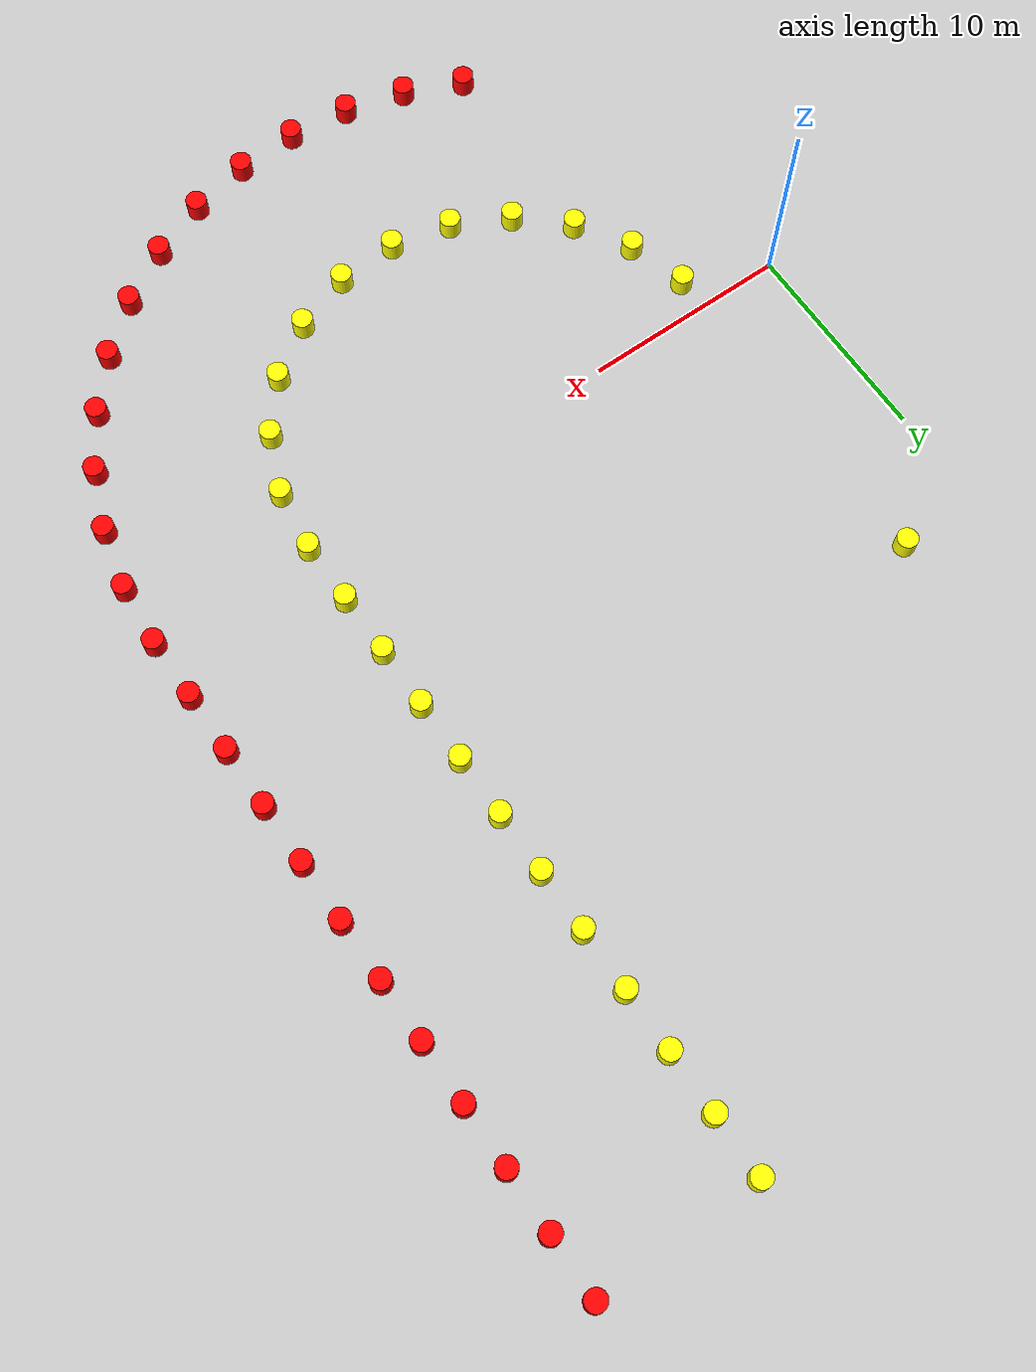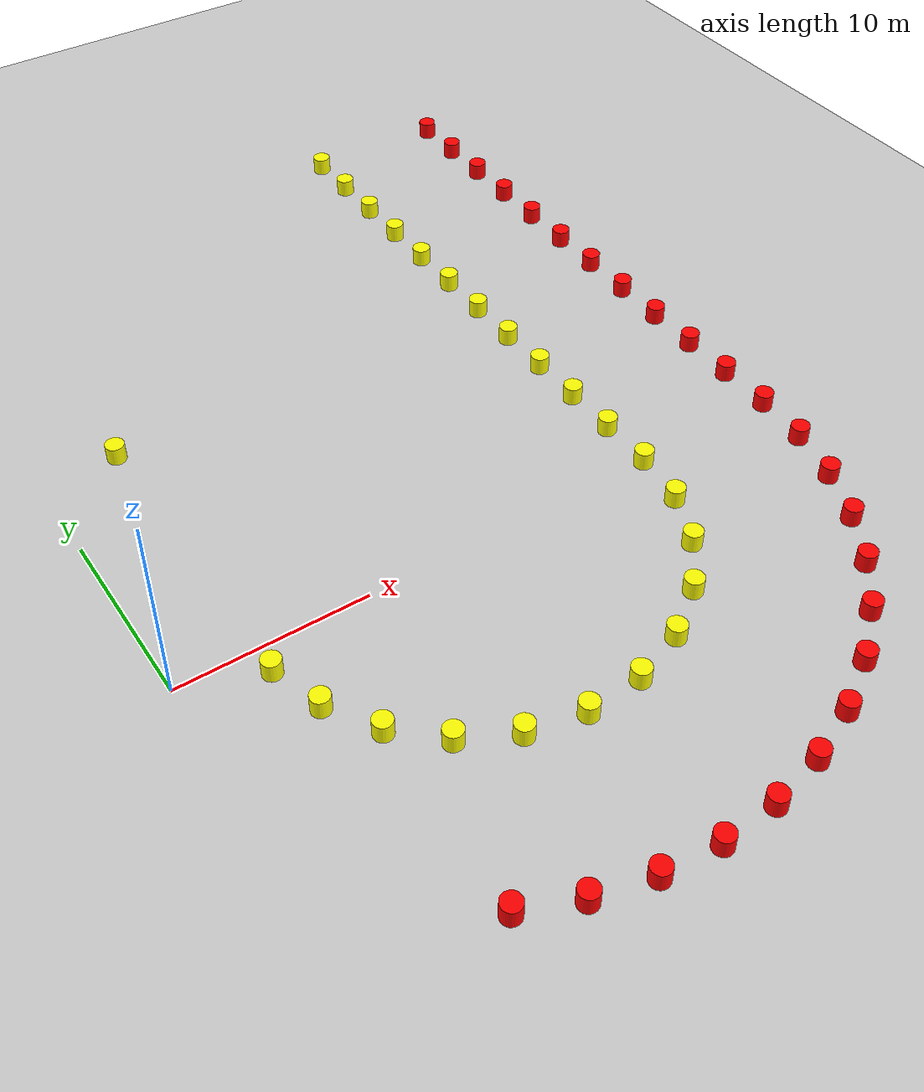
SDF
<sdf version="1.9">
 <world name="empty">
  <model name="ground_plane">
   <static>true</static>
   <link name="link">
    <collision name="collision">
     <geometry><plane><normal>0 0 1</normal><size>1000 1000</size></plane></geometry>
    </collision>
    <visual name="visual">
     <geometry><plane><normal>0 0 1</normal><size>1000 1000</size></plane></geometry>
     <material>
      <ambient>0.8 0.8 0.8 1</ambient>
      <diffuse>0.8 0.8 0.8 1</diffuse>
      <specular>0.8 0.8 0.8 1</specular>
     </material>
    </visual>
    <inertial>
     <mass>1</mass>
     <inertia><ixx>1</ixx><ixy>0</ixy><ixz>0</ixz><iyy>1</iyy><iyz>0</iyz><izz>1</izz></inertia>
    </inertial>
   </link>
  </model>
  <model name="red_cone_79">
   <pose>34.0 33.00000000000001 0.5 0 -0 0</pose>
   <link name="cylinder_link">
    <inertial>
     <inertia>
      <ixx>0.14580000000000001</ixx>
      <ixy>0</ixy>
      <ixz>0</ixz>
      <iyy>0.14580000000000001</iyy>
      <iyz>0</iyz>
      <izz>0.125</izz>
     </inertia>
     <mass>1</mass>
    </inertial>
    <collision name="cylinder_collision">
     <geometry><cylinder><radius>0.5</radius><length>1</length></cylinder></geometry>
    </collision>
    <visual name="cylinder_visual">
     <geometry><cylinder><radius>0.5</radius><length>1</length></cylinder></geometry>
     <material><ambient>1 0 0 1</ambient><diffuse>1 0 0 1</diffuse><specular>1 1 1 1</specular></material>
    </visual>
   </link>
   <static>false</static>
  </model>
  <model name="red_cone_80">
   <pose>34.00000000000001 30.000000000000007 0.5 0 -0 0</pose>
   <link name="cylinder_link">
    <inertial>
     <inertia>
      <ixx>0.14580000000000001</ixx>
      <ixy>0</ixy>
      <ixz>0</ixz>
      <iyy>0.14580000000000001</iyy>
      <iyz>0</iyz>
      <izz>0.125</izz>
     </inertia>
     <mass>1</mass>
    </inertial>
    <collision name="cylinder_collision">
     <geometry><cylinder><radius>0.5</radius><length>1</length></cylinder></geometry>
    </collision>
    <visual name="cylinder_visual">
     <geometry><cylinder><radius>0.5</radius><length>1</length></cylinder></geometry>
     <material><ambient>1 0 0 1</ambient><diffuse>1 0 0 1</diffuse><specular>1 1 1 1</specular></material>
    </visual>
   </link>
   <static>false</static>
  </model>
  <model name="red_cone_81">
   <pose>34.00000000000001 27.000000000000007 0.5 0 -0 0</pose>
   <link name="cylinder_link">
    <inertial>
     <inertia>
      <ixx>0.14580000000000001</ixx>
      <ixy>0</ixy>
      <ixz>0</ixz>
      <iyy>0.14580000000000001</iyy>
      <iyz>0</iyz>
      <izz>0.125</izz>
     </inertia>
     <mass>1</mass>
    </inertial>
    <collision name="cylinder_collision">
     <geometry><cylinder><radius>0.5</radius><length>1</length></cylinder></geometry>
    </collision>
    <visual name="cylinder_visual">
     <geometry><cylinder><radius>0.5</radius><length>1</length></cylinder></geometry>
     <material><ambient>1 0 0 1</ambient><diffuse>1 0 0 1</diffuse><specular>1 1 1 1</specular></material>
    </visual>
   </link>
   <static>false</static>
  </model>
  <model name="red_cone_82">
   <pose>34.00000000000001 24.000000000000007 0.5 0 -0 0</pose>
   <link name="cylinder_link">
    <inertial>
     <inertia>
      <ixx>0.14580000000000001</ixx>
      <ixy>0</ixy>
      <ixz>0</ixz>
      <iyy>0.14580000000000001</iyy>
      <iyz>0</iyz>
      <izz>0.125</izz>
     </inertia>
     <mass>1</mass>
    </inertial>
    <collision name="cylinder_collision">
     <geometry><cylinder><radius>0.5</radius><length>1</length></cylinder></geometry>
    </collision>
    <visual name="cylinder_visual">
     <geometry><cylinder><radius>0.5</radius><length>1</length></cylinder></geometry>
     <material><ambient>1 0 0 1</ambient><diffuse>1 0 0 1</diffuse><specular>1 1 1 1</specular></material>
    </visual>
   </link>
   <static>false</static>
  </model>
  <model name="red_cone_83">
   <pose>34.00000000000001 21.000000000000007 0.5 0 -0 0</pose>
   <link name="cylinder_link">
    <inertial>
     <inertia>
      <ixx>0.14580000000000001</ixx>
      <ixy>0</ixy>
      <ixz>0</ixz>
      <iyy>0.14580000000000001</iyy>
      <iyz>0</iyz>
      <izz>0.125</izz>
     </inertia>
     <mass>1</mass>
    </inertial>
    <collision name="cylinder_collision">
     <geometry><cylinder><radius>0.5</radius><length>1</length></cylinder></geometry>
    </collision>
    <visual name="cylinder_visual">
     <geometry><cylinder><radius>0.5</radius><length>1</length></cylinder></geometry>
     <material><ambient>1 0 0 1</ambient><diffuse>1 0 0 1</diffuse><specular>1 1 1 1</specular></material>
    </visual>
   </link>
   <static>false</static>
  </model>
  <model name="red_cone_84">
   <pose>34.00000000000001 18.000000000000007 0.5 0 -0 0</pose>
   <link name="cylinder_link">
    <inertial>
     <inertia>
      <ixx>0.14580000000000001</ixx>
      <ixy>0</ixy>
      <ixz>0</ixz>
      <iyy>0.14580000000000001</iyy>
      <iyz>0</iyz>
      <izz>0.125</izz>
     </inertia>
     <mass>1</mass>
    </inertial>
    <collision name="cylinder_collision">
     <geometry><cylinder><radius>0.5</radius><length>1</length></cylinder></geometry>
    </collision>
    <visual name="cylinder_visual">
     <geometry><cylinder><radius>0.5</radius><length>1</length></cylinder></geometry>
     <material><ambient>1 0 0 1</ambient><diffuse>1 0 0 1</diffuse><specular>1 1 1 1</specular></material>
    </visual>
   </link>
   <static>false</static>
  </model>
  <model name="red_cone_85">
   <pose>34.00000000000001 15.000000000000007 0.5 0 -0 0</pose>
   <link name="cylinder_link">
    <inertial>
     <inertia>
      <ixx>0.14580000000000001</ixx>
      <ixy>0</ixy>
      <ixz>0</ixz>
      <iyy>0.14580000000000001</iyy>
      <iyz>0</iyz>
      <izz>0.125</izz>
     </inertia>
     <mass>1</mass>
    </inertial>
    <collision name="cylinder_collision">
     <geometry><cylinder><radius>0.5</radius><length>1</length></cylinder></geometry>
    </collision>
    <visual name="cylinder_visual">
     <geometry><cylinder><radius>0.5</radius><length>1</length></cylinder></geometry>
     <material><ambient>1 0 0 1</ambient><diffuse>1 0 0 1</diffuse><specular>1 1 1 1</specular></material>
    </visual>
   </link>
   <static>false</static>
  </model>
  <model name="red_cone_86">
   <pose>34.00000000000001 12.000000000000007 0.5 0 -0 0</pose>
   <link name="cylinder_link">
    <inertial>
     <inertia>
      <ixx>0.14580000000000001</ixx>
      <ixy>0</ixy>
      <ixz>0</ixz>
      <iyy>0.14580000000000001</iyy>
      <iyz>0</iyz>
      <izz>0.125</izz>
     </inertia>
     <mass>1</mass>
    </inertial>
    <collision name="cylinder_collision">
     <geometry><cylinder><radius>0.5</radius><length>1</length></cylinder></geometry>
    </collision>
    <visual name="cylinder_visual">
     <geometry><cylinder><radius>0.5</radius><length>1</length></cylinder></geometry>
     <material><ambient>1 0 0 1</ambient><diffuse>1 0 0 1</diffuse><specular>1 1 1 1</specular></material>
    </visual>
   </link>
   <static>false</static>
  </model>
  <model name="red_cone_87">
   <pose>34.00000000000001 9.000000000000007 0.5 0 -0 0</pose>
   <link name="cylinder_link">
    <inertial>
     <inertia>
      <ixx>0.14580000000000001</ixx>
      <ixy>0</ixy>
      <ixz>0</ixz>
      <iyy>0.14580000000000001</iyy>
      <iyz>0</iyz>
      <izz>0.125</izz>
     </inertia>
     <mass>1</mass>
    </inertial>
    <collision name="cylinder_collision">
     <geometry><cylinder><radius>0.5</radius><length>1</length></cylinder></geometry>
    </collision>
    <visual name="cylinder_visual">
     <geometry><cylinder><radius>0.5</radius><length>1</length></cylinder></geometry>
     <material><ambient>1 0 0 1</ambient><diffuse>1 0 0 1</diffuse><specular>1 1 1 1</specular></material>
    </visual>
   </link>
   <static>false</static>
  </model>
  <model name="red_cone_88">
   <pose>34.00000000000001 6.000000000000007 0.5 0 -0 0</pose>
   <link name="cylinder_link">
    <inertial>
     <inertia>
      <ixx>0.14580000000000001</ixx>
      <ixy>0</ixy>
      <ixz>0</ixz>
      <iyy>0.14580000000000001</iyy>
      <iyz>0</iyz>
      <izz>0.125</izz>
     </inertia>
     <mass>1</mass>
    </inertial>
    <collision name="cylinder_collision">
     <geometry><cylinder><radius>0.5</radius><length>1</length></cylinder></geometry>
    </collision>
    <visual name="cylinder_visual">
     <geometry><cylinder><radius>0.5</radius><length>1</length></cylinder></geometry>
     <material><ambient>1 0 0 1</ambient><diffuse>1 0 0 1</diffuse><specular>1 1 1 1</specular></material>
    </visual>
   </link>
   <static>false</static>
  </model>
  <model name="red_cone_89">
   <pose>34.00000000000001 3.000000000000007 0.5 0 -0 0</pose>
   <link name="cylinder_link">
    <inertial>
     <inertia>
      <ixx>0.14580000000000001</ixx>
      <ixy>0</ixy>
      <ixz>0</ixz>
      <iyy>0.14580000000000001</iyy>
      <iyz>0</iyz>
      <izz>0.125</izz>
     </inertia>
     <mass>1</mass>
    </inertial>
    <collision name="cylinder_collision">
     <geometry><cylinder><radius>0.5</radius><length>1</length></cylinder></geometry>
    </collision>
    <visual name="cylinder_visual">
     <geometry><cylinder><radius>0.5</radius><length>1</length></cylinder></geometry>
     <material><ambient>1 0 0 1</ambient><diffuse>1 0 0 1</diffuse><specular>1 1 1 1</specular></material>
    </visual>
   </link>
   <static>false</static>
  </model>
  <model name="red_cone_90">
   <pose>34.00000000000001 7.105427357601002e-15 0.5 0 -0 0</pose>
   <link name="cylinder_link">
    <inertial>
     <inertia>
      <ixx>0.14580000000000001</ixx>
      <ixy>0</ixy>
      <ixz>0</ixz>
      <iyy>0.14580000000000001</iyy>
      <iyz>0</iyz>
      <izz>0.125</izz>
     </inertia>
     <mass>1</mass>
    </inertial>
    <collision name="cylinder_collision">
     <geometry><cylinder><radius>0.5</radius><length>1</length></cylinder></geometry>
    </collision>
    <visual name="cylinder_visual">
     <geometry><cylinder><radius>0.5</radius><length>1</length></cylinder></geometry>
     <material><ambient>1 0 0 1</ambient><diffuse>1 0 0 1</diffuse><specular>1 1 1 1</specular></material>
    </visual>
   </link>
   <static>false</static>
  </model>
  <model name="red_cone_91">
   <pose>34.00000000000001 1.0595670735170958e-14 0.5 0 -0 0</pose>
   <link name="cylinder_link">
    <inertial>
     <inertia>
      <ixx>0.14580000000000001</ixx>
      <ixy>0</ixy>
      <ixz>0</ixz>
      <iyy>0.14580000000000001</iyy>
      <iyz>0</iyz>
      <izz>0.125</izz>
     </inertia>
     <mass>1</mass>
    </inertial>
    <collision name="cylinder_collision">
     <geometry><cylinder><radius>0.5</radius><length>1</length></cylinder></geometry>
    </collision>
    <visual name="cylinder_visual">
     <geometry><cylinder><radius>0.5</radius><length>1</length></cylinder></geometry>
     <material><ambient>1 0 0 1</ambient><diffuse>1 0 0 1</diffuse><specular>1 1 1 1</specular></material>
    </visual>
   </link>
   <static>false</static>
  </model>
  <model name="red_cone_92">
   <pose>33.76364954024481 -2.987550155373245 0.5 0 -0 0</pose>
   <link name="cylinder_link">
    <inertial>
     <inertia>
      <ixx>0.14580000000000001</ixx>
      <ixy>0</ixy>
      <ixz>0</ixz>
      <iyy>0.14580000000000001</iyy>
      <iyz>0</iyz>
      <izz>0.125</izz>
     </inertia>
     <mass>1</mass>
    </inertial>
    <collision name="cylinder_collision">
     <geometry><cylinder><radius>0.5</radius><length>1</length></cylinder></geometry>
    </collision>
    <visual name="cylinder_visual">
     <geometry><cylinder><radius>0.5</radius><length>1</length></cylinder></geometry>
     <material><ambient>1 0 0 1</ambient><diffuse>1 0 0 1</diffuse><specular>1 1 1 1</specular></material>
    </visual>
   </link>
   <static>false</static>
  </model>
  <model name="red_cone_93">
   <pose>33.06047832306625 -5.900773063087115 0.5 0 -0 0</pose>
   <link name="cylinder_link">
    <inertial>
     <inertia>
      <ixx>0.14580000000000001</ixx>
      <ixy>0</ixy>
      <ixz>0</ixz>
      <iyy>0.14580000000000001</iyy>
      <iyz>0</iyz>
      <izz>0.125</izz>
     </inertia>
     <mass>1</mass>
    </inertial>
    <collision name="cylinder_collision">
     <geometry><cylinder><radius>0.5</radius><length>1</length></cylinder></geometry>
    </collision>
    <visual name="cylinder_visual">
     <geometry><cylinder><radius>0.5</radius><length>1</length></cylinder></geometry>
     <material><ambient>1 0 0 1</ambient><diffuse>1 0 0 1</diffuse><specular>1 1 1 1</specular></material>
    </visual>
   </link>
   <static>false</static>
  </model>
  <model name="red_cone_94">
   <pose>31.907980542197635 -8.667190662761861 0.5 0 -0 0</pose>
   <link name="cylinder_link">
    <inertial>
     <inertia>
      <ixx>0.14580000000000001</ixx>
      <ixy>0</ixy>
      <ixz>0</ixz>
      <iyy>0.14580000000000001</iyy>
      <iyz>0</iyz>
      <izz>0.125</izz>
     </inertia>
     <mass>1</mass>
    </inertial>
    <collision name="cylinder_collision">
     <geometry><cylinder><radius>0.5</radius><length>1</length></cylinder></geometry>
    </collision>
    <visual name="cylinder_visual">
     <geometry><cylinder><radius>0.5</radius><length>1</length></cylinder></geometry>
     <material><ambient>1 0 0 1</ambient><diffuse>1 0 0 1</diffuse><specular>1 1 1 1</specular></material>
    </visual>
   </link>
   <static>false</static>
  </model>
  <model name="red_cone_95">
   <pose>30.334829185046893 -11.217977262654538 0.5 0 -0 0</pose>
   <link name="cylinder_link">
    <inertial>
     <inertia>
      <ixx>0.14580000000000001</ixx>
      <ixy>0</ixy>
      <ixz>0</ixz>
      <iyy>0.14580000000000001</iyy>
      <iyz>0</iyz>
      <izz>0.125</izz>
     </inertia>
     <mass>1</mass>
    </inertial>
    <collision name="cylinder_collision">
     <geometry><cylinder><radius>0.5</radius><length>1</length></cylinder></geometry>
    </collision>
    <visual name="cylinder_visual">
     <geometry><cylinder><radius>0.5</radius><length>1</length></cylinder></geometry>
     <material><ambient>1 0 0 1</ambient><diffuse>1 0 0 1</diffuse><specular>1 1 1 1</specular></material>
    </visual>
   </link>
   <static>false</static>
  </model>
  <model name="red_cone_96">
   <pose>28.380162677564243 -13.489671853752297 0.5 0 -0 0</pose>
   <link name="cylinder_link">
    <inertial>
     <inertia>
      <ixx>0.14580000000000001</ixx>
      <ixy>0</ixy>
      <ixz>0</ixz>
      <iyy>0.14580000000000001</iyy>
      <iyz>0</iyz>
      <izz>0.125</izz>
     </inertia>
     <mass>1</mass>
    </inertial>
    <collision name="cylinder_collision">
     <geometry><cylinder><radius>0.5</radius><length>1</length></cylinder></geometry>
    </collision>
    <visual name="cylinder_visual">
     <geometry><cylinder><radius>0.5</radius><length>1</length></cylinder></geometry>
     <material><ambient>1 0 0 1</ambient><diffuse>1 0 0 1</diffuse><specular>1 1 1 1</specular></material>
    </visual>
   </link>
   <static>false</static>
  </model>
  <model name="red_cone_97">
   <pose>26.092611159508795 -15.425756955946795 0.5 0 -0 0</pose>
   <link name="cylinder_link">
    <inertial>
     <inertia>
      <ixx>0.14580000000000001</ixx>
      <ixy>0</ixy>
      <ixz>0</ixz>
      <iyy>0.14580000000000001</iyy>
      <iyz>0</iyz>
      <izz>0.125</izz>
     </inertia>
     <mass>1</mass>
    </inertial>
    <collision name="cylinder_collision">
     <geometry><cylinder><radius>0.5</radius><length>1</length></cylinder></geometry>
    </collision>
    <visual name="cylinder_visual">
     <geometry><cylinder><radius>0.5</radius><length>1</length></cylinder></geometry>
     <material><ambient>1 0 0 1</ambient><diffuse>1 0 0 1</diffuse><specular>1 1 1 1</specular></material>
    </visual>
   </link>
   <static>false</static>
  </model>
  <model name="red_cone_98">
   <pose>23.529086615407508 -16.97806471618236 0.5 0 -0 0</pose>
   <link name="cylinder_link">
    <inertial>
     <inertia>
      <ixx>0.14580000000000001</ixx>
      <ixy>0</ixy>
      <ixz>0</ixz>
      <iyy>0.14580000000000001</iyy>
      <iyz>0</iyz>
      <izz>0.125</izz>
     </inertia>
     <mass>1</mass>
    </inertial>
    <collision name="cylinder_collision">
     <geometry><cylinder><radius>0.5</radius><length>1</length></cylinder></geometry>
    </collision>
    <visual name="cylinder_visual">
     <geometry><cylinder><radius>0.5</radius><length>1</length></cylinder></geometry>
     <material><ambient>1 0 0 1</ambient><diffuse>1 0 0 1</diffuse><specular>1 1 1 1</specular></material>
    </visual>
   </link>
   <static>false</static>
  </model>
  <model name="red_cone_99">
   <pose>20.753366961533235 -18.107975276268125 0.5 0 -0 0</pose>
   <link name="cylinder_link">
    <inertial>
     <inertia>
      <ixx>0.14580000000000001</ixx>
      <ixy>0</ixy>
      <ixz>0</ixz>
      <iyy>0.14580000000000001</iyy>
      <iyz>0</iyz>
      <izz>0.125</izz>
     </inertia>
     <mass>1</mass>
    </inertial>
    <collision name="cylinder_collision">
     <geometry><cylinder><radius>0.5</radius><length>1</length></cylinder></geometry>
    </collision>
    <visual name="cylinder_visual">
     <geometry><cylinder><radius>0.5</radius><length>1</length></cylinder></geometry>
     <material><ambient>1 0 0 1</ambient><diffuse>1 0 0 1</diffuse><specular>1 1 1 1</specular></material>
    </visual>
   </link>
   <static>false</static>
  </model>
  <model name="red_cone_100">
   <pose>17.834509315395955 -18.78737759616635 0.5 0 -0 0</pose>
   <link name="cylinder_link">
    <inertial>
     <inertia>
      <ixx>0.14580000000000001</ixx>
      <ixy>0</ixy>
      <ixz>0</ixz>
      <iyy>0.14580000000000001</iyy>
      <iyz>0</iyz>
      <izz>0.125</izz>
     </inertia>
     <mass>1</mass>
    </inertial>
    <collision name="cylinder_collision">
     <geometry><cylinder><radius>0.5</radius><length>1</length></cylinder></geometry>
    </collision>
    <visual name="cylinder_visual">
     <geometry><cylinder><radius>0.5</radius><length>1</length></cylinder></geometry>
     <material><ambient>1 0 0 1</ambient><diffuse>1 0 0 1</diffuse><specular>1 1 1 1</specular></material>
    </visual>
   </link>
   <static>false</static>
  </model>
  <model name="red_cone_101">
   <pose>14.845131924008728 -18.999368828438445 0.5 0 -0 0</pose>
   <link name="cylinder_link">
    <inertial>
     <inertia>
      <ixx>0.14580000000000001</ixx>
      <ixy>0</ixy>
      <ixz>0</ixz>
      <iyy>0.14580000000000001</iyy>
      <iyz>0</iyz>
      <izz>0.125</izz>
     </inertia>
     <mass>1</mass>
    </inertial>
    <collision name="cylinder_collision">
     <geometry><cylinder><radius>0.5</radius><length>1</length></cylinder></geometry>
    </collision>
    <visual name="cylinder_visual">
     <geometry><cylinder><radius>0.5</radius><length>1</length></cylinder></geometry>
     <material><ambient>1 0 0 1</ambient><diffuse>1 0 0 1</diffuse><specular>1 1 1 1</specular></material>
    </visual>
   </link>
   <static>false</static>
  </model>
  <model name="red_cone_102">
   <pose>11.859607494828051 -18.738674844114765 0.5 0 -0 0</pose>
   <link name="cylinder_link">
    <inertial>
     <inertia>
      <ixx>0.14580000000000001</ixx>
      <ixy>0</ixy>
      <ixz>0</ixz>
      <iyy>0.14580000000000001</iyy>
      <iyz>0</iyz>
      <izz>0.125</izz>
     </inertia>
     <mass>1</mass>
    </inertial>
    <collision name="cylinder_collision">
     <geometry><cylinder><radius>0.5</radius><length>1</length></cylinder></geometry>
    </collision>
    <visual name="cylinder_visual">
     <geometry><cylinder><radius>0.5</radius><length>1</length></cylinder></geometry>
     <material><ambient>1 0 0 1</ambient><diffuse>1 0 0 1</diffuse><specular>1 1 1 1</specular></material>
    </visual>
   </link>
   <static>false</static>
  </model>
  <model name="red_cone_103">
   <pose>8.952212877479885 -18.011781447726914 0.5 0 -0 0</pose>
   <link name="cylinder_link">
    <inertial>
     <inertia>
      <ixx>0.14580000000000001</ixx>
      <ixy>0</ixy>
      <ixz>0</ixz>
      <iyy>0.14580000000000001</iyy>
      <iyz>0</iyz>
      <izz>0.125</izz>
     </inertia>
     <mass>1</mass>
    </inertial>
    <collision name="cylinder_collision">
     <geometry><cylinder><radius>0.5</radius><length>1</length></cylinder></geometry>
    </collision>
    <visual name="cylinder_visual">
     <geometry><cylinder><radius>0.5</radius><length>1</length></cylinder></geometry>
     <material><ambient>1 0 0 1</ambient><diffuse>1 0 0 1</diffuse><specular>1 1 1 1</specular></material>
    </visual>
   </link>
   <static>false</static>
  </model>
  <model name="red_cone_104">
   <pose>6.195281130332713 -16.83677301700431 0.5 0 -0 0</pose>
   <link name="cylinder_link">
    <inertial>
     <inertia>
      <ixx>0.14580000000000001</ixx>
      <ixy>0</ixy>
      <ixz>0</ixz>
      <iyy>0.14580000000000001</iyy>
      <iyz>0</iyz>
      <izz>0.125</izz>
     </inertia>
     <mass>1</mass>
    </inertial>
    <collision name="cylinder_collision">
     <geometry><cylinder><radius>0.5</radius><length>1</length></cylinder></geometry>
    </collision>
    <visual name="cylinder_visual">
     <geometry><cylinder><radius>0.5</radius><length>1</length></cylinder></geometry>
     <material><ambient>1 0 0 1</ambient><diffuse>1 0 0 1</diffuse><specular>1 1 1 1</specular></material>
    </visual>
   </link>
   <static>false</static>
  </model>
  <model name="yellow_cone_6">
   <pose>4.0 15.000000000000002 0.5 0 -0 0</pose>
   <link name="cylinder_link">
    <inertial>
     <inertia>
      <ixx>0.14580000000000001</ixx>
      <ixy>0</ixy>
      <ixz>0</ixz>
      <iyy>0.14580000000000001</iyy>
      <iyz>0</iyz>
      <izz>0.125</izz>
     </inertia>
     <mass>1</mass>
    </inertial>
    <collision name="cylinder_collision">
     <geometry><cylinder><radius>0.5</radius><length>1</length></cylinder></geometry>
    </collision>
    <visual name="cylinder_visual">
     <geometry><cylinder><radius>0.5</radius><length>1</length></cylinder></geometry>
     <material><ambient>1 1 0 1</ambient><diffuse>1 1 0 1</diffuse><specular>1 1 1 1</specular></material>
    </visual>
   </link>
   <static>false</static>
  </model>
  <model name="yellow_cone_71">
   <pose>26.0 33.0 0.5 0 -0 0</pose>
   <link name="cylinder_link">
    <inertial>
     <inertia>
      <ixx>0.14580000000000001</ixx>
      <ixy>0</ixy>
      <ixz>0</ixz>
      <iyy>0.14580000000000001</iyy>
      <iyz>0</iyz>
      <izz>0.125</izz>
     </inertia>
     <mass>1</mass>
    </inertial>
    <collision name="cylinder_collision">
     <geometry><cylinder><radius>0.5</radius><length>1</length></cylinder></geometry>
    </collision>
    <visual name="cylinder_visual">
     <geometry><cylinder><radius>0.5</radius><length>1</length></cylinder></geometry>
     <material><ambient>1 1 0 1</ambient><diffuse>1 1 0 1</diffuse><specular>1 1 1 1</specular></material>
    </visual>
   </link>
   <static>false</static>
  </model>
  <model name="yellow_cone_72">
   <pose>26.0 30.0 0.5 0 -0 0</pose>
   <link name="cylinder_link">
    <inertial>
     <inertia>
      <ixx>0.14580000000000001</ixx>
      <ixy>0</ixy>
      <ixz>0</ixz>
      <iyy>0.14580000000000001</iyy>
      <iyz>0</iyz>
      <izz>0.125</izz>
     </inertia>
     <mass>1</mass>
    </inertial>
    <collision name="cylinder_collision">
     <geometry><cylinder><radius>0.5</radius><length>1</length></cylinder></geometry>
    </collision>
    <visual name="cylinder_visual">
     <geometry><cylinder><radius>0.5</radius><length>1</length></cylinder></geometry>
     <material><ambient>1 1 0 1</ambient><diffuse>1 1 0 1</diffuse><specular>1 1 1 1</specular></material>
    </visual>
   </link>
   <static>false</static>
  </model>
  <model name="yellow_cone_73">
   <pose>26.0 27.0 0.5 0 -0 0</pose>
   <link name="cylinder_link">
    <inertial>
     <inertia>
      <ixx>0.14580000000000001</ixx>
      <ixy>0</ixy>
      <ixz>0</ixz>
      <iyy>0.14580000000000001</iyy>
      <iyz>0</iyz>
      <izz>0.125</izz>
     </inertia>
     <mass>1</mass>
    </inertial>
    <collision name="cylinder_collision">
     <geometry><cylinder><radius>0.5</radius><length>1</length></cylinder></geometry>
    </collision>
    <visual name="cylinder_visual">
     <geometry><cylinder><radius>0.5</radius><length>1</length></cylinder></geometry>
     <material><ambient>1 1 0 1</ambient><diffuse>1 1 0 1</diffuse><specular>1 1 1 1</specular></material>
    </visual>
   </link>
   <static>false</static>
  </model>
  <model name="yellow_cone_74">
   <pose>26.0 24.0 0.5 0 -0 0</pose>
   <link name="cylinder_link">
    <inertial>
     <inertia>
      <ixx>0.14580000000000001</ixx>
      <ixy>0</ixy>
      <ixz>0</ixz>
      <iyy>0.14580000000000001</iyy>
      <iyz>0</iyz>
      <izz>0.125</izz>
     </inertia>
     <mass>1</mass>
    </inertial>
    <collision name="cylinder_collision">
     <geometry><cylinder><radius>0.5</radius><length>1</length></cylinder></geometry>
    </collision>
    <visual name="cylinder_visual">
     <geometry><cylinder><radius>0.5</radius><length>1</length></cylinder></geometry>
     <material><ambient>1 1 0 1</ambient><diffuse>1 1 0 1</diffuse><specular>1 1 1 1</specular></material>
    </visual>
   </link>
   <static>false</static>
  </model>
  <model name="yellow_cone_75">
   <pose>26.0 21.0 0.5 0 -0 0</pose>
   <link name="cylinder_link">
    <inertial>
     <inertia>
      <ixx>0.14580000000000001</ixx>
      <ixy>0</ixy>
      <ixz>0</ixz>
      <iyy>0.14580000000000001</iyy>
      <iyz>0</iyz>
      <izz>0.125</izz>
     </inertia>
     <mass>1</mass>
    </inertial>
    <collision name="cylinder_collision">
     <geometry><cylinder><radius>0.5</radius><length>1</length></cylinder></geometry>
    </collision>
    <visual name="cylinder_visual">
     <geometry><cylinder><radius>0.5</radius><length>1</length></cylinder></geometry>
     <material><ambient>1 1 0 1</ambient><diffuse>1 1 0 1</diffuse><specular>1 1 1 1</specular></material>
    </visual>
   </link>
   <static>false</static>
  </model>
  <model name="yellow_cone_76">
   <pose>26.0 18.0 0.5 0 -0 0</pose>
   <link name="cylinder_link">
    <inertial>
     <inertia>
      <ixx>0.14580000000000001</ixx>
      <ixy>0</ixy>
      <ixz>0</ixz>
      <iyy>0.14580000000000001</iyy>
      <iyz>0</iyz>
      <izz>0.125</izz>
     </inertia>
     <mass>1</mass>
    </inertial>
    <collision name="cylinder_collision">
     <geometry><cylinder><radius>0.5</radius><length>1</length></cylinder></geometry>
    </collision>
    <visual name="cylinder_visual">
     <geometry><cylinder><radius>0.5</radius><length>1</length></cylinder></geometry>
     <material><ambient>1 1 0 1</ambient><diffuse>1 1 0 1</diffuse><specular>1 1 1 1</specular></material>
    </visual>
   </link>
   <static>false</static>
  </model>
  <model name="yellow_cone_77">
   <pose>26.000000000000004 15.0 0.5 0 -0 0</pose>
   <link name="cylinder_link">
    <inertial>
     <inertia>
      <ixx>0.14580000000000001</ixx>
      <ixy>0</ixy>
      <ixz>0</ixz>
      <iyy>0.14580000000000001</iyy>
      <iyz>0</iyz>
      <izz>0.125</izz>
     </inertia>
     <mass>1</mass>
    </inertial>
    <collision name="cylinder_collision">
     <geometry><cylinder><radius>0.5</radius><length>1</length></cylinder></geometry>
    </collision>
    <visual name="cylinder_visual">
     <geometry><cylinder><radius>0.5</radius><length>1</length></cylinder></geometry>
     <material><ambient>1 1 0 1</ambient><diffuse>1 1 0 1</diffuse><specular>1 1 1 1</specular></material>
    </visual>
   </link>
   <static>false</static>
  </model>
  <model name="yellow_cone_78">
   <pose>26.000000000000004 12.0 0.5 0 -0 0</pose>
   <link name="cylinder_link">
    <inertial>
     <inertia>
      <ixx>0.14580000000000001</ixx>
      <ixy>0</ixy>
      <ixz>0</ixz>
      <iyy>0.14580000000000001</iyy>
      <iyz>0</iyz>
      <izz>0.125</izz>
     </inertia>
     <mass>1</mass>
    </inertial>
    <collision name="cylinder_collision">
     <geometry><cylinder><radius>0.5</radius><length>1</length></cylinder></geometry>
    </collision>
    <visual name="cylinder_visual">
     <geometry><cylinder><radius>0.5</radius><length>1</length></cylinder></geometry>
     <material><ambient>1 1 0 1</ambient><diffuse>1 1 0 1</diffuse><specular>1 1 1 1</specular></material>
    </visual>
   </link>
   <static>false</static>
  </model>
  <model name="yellow_cone_79">
   <pose>26.000000000000004 9.0 0.5 0 -0 0</pose>
   <link name="cylinder_link">
    <inertial>
     <inertia>
      <ixx>0.14580000000000001</ixx>
      <ixy>0</ixy>
      <ixz>0</ixz>
      <iyy>0.14580000000000001</iyy>
      <iyz>0</iyz>
      <izz>0.125</izz>
     </inertia>
     <mass>1</mass>
    </inertial>
    <collision name="cylinder_collision">
     <geometry><cylinder><radius>0.5</radius><length>1</length></cylinder></geometry>
    </collision>
    <visual name="cylinder_visual">
     <geometry><cylinder><radius>0.5</radius><length>1</length></cylinder></geometry>
     <material><ambient>1 1 0 1</ambient><diffuse>1 1 0 1</diffuse><specular>1 1 1 1</specular></material>
    </visual>
   </link>
   <static>false</static>
  </model>
  <model name="yellow_cone_80">
   <pose>26.000000000000004 6.0 0.5 0 -0 0</pose>
   <link name="cylinder_link">
    <inertial>
     <inertia>
      <ixx>0.14580000000000001</ixx>
      <ixy>0</ixy>
      <ixz>0</ixz>
      <iyy>0.14580000000000001</iyy>
      <iyz>0</iyz>
      <izz>0.125</izz>
     </inertia>
     <mass>1</mass>
    </inertial>
    <collision name="cylinder_collision">
     <geometry><cylinder><radius>0.5</radius><length>1</length></cylinder></geometry>
    </collision>
    <visual name="cylinder_visual">
     <geometry><cylinder><radius>0.5</radius><length>1</length></cylinder></geometry>
     <material><ambient>1 1 0 1</ambient><diffuse>1 1 0 1</diffuse><specular>1 1 1 1</specular></material>
    </visual>
   </link>
   <static>false</static>
  </model>
  <model name="yellow_cone_81">
   <pose>26.000000000000004 3.0 0.5 0 -0 0</pose>
   <link name="cylinder_link">
    <inertial>
     <inertia>
      <ixx>0.14580000000000001</ixx>
      <ixy>0</ixy>
      <ixz>0</ixz>
      <iyy>0.14580000000000001</iyy>
      <iyz>0</iyz>
      <izz>0.125</izz>
     </inertia>
     <mass>1</mass>
    </inertial>
    <collision name="cylinder_collision">
     <geometry><cylinder><radius>0.5</radius><length>1</length></cylinder></geometry>
    </collision>
    <visual name="cylinder_visual">
     <geometry><cylinder><radius>0.5</radius><length>1</length></cylinder></geometry>
     <material><ambient>1 1 0 1</ambient><diffuse>1 1 0 1</diffuse><specular>1 1 1 1</specular></material>
    </visual>
   </link>
   <static>false</static>
  </model>
  <model name="yellow_cone_82">
   <pose>26.000000000000004 0.0 0.5 0 -0 0</pose>
   <link name="cylinder_link">
    <inertial>
     <inertia>
      <ixx>0.14580000000000001</ixx>
      <ixy>0</ixy>
      <ixz>0</ixz>
      <iyy>0.14580000000000001</iyy>
      <iyz>0</iyz>
      <izz>0.125</izz>
     </inertia>
     <mass>1</mass>
    </inertial>
    <collision name="cylinder_collision">
     <geometry><cylinder><radius>0.5</radius><length>1</length></cylinder></geometry>
    </collision>
    <visual name="cylinder_visual">
     <geometry><cylinder><radius>0.5</radius><length>1</length></cylinder></geometry>
     <material><ambient>1 1 0 1</ambient><diffuse>1 1 0 1</diffuse><specular>1 1 1 1</specular></material>
    </visual>
   </link>
   <static>false</static>
  </model>
  <model name="yellow_cone_83">
   <pose>26.000000000000004 2.020667218593133e-15 0.5 0 -0 0</pose>
   <link name="cylinder_link">
    <inertial>
     <inertia>
      <ixx>0.14580000000000001</ixx>
      <ixy>0</ixy>
      <ixz>0</ixz>
      <iyy>0.14580000000000001</iyy>
      <iyz>0</iyz>
      <izz>0.125</izz>
     </inertia>
     <mass>1</mass>
    </inertial>
    <collision name="cylinder_collision">
     <geometry><cylinder><radius>0.5</radius><length>1</length></cylinder></geometry>
    </collision>
    <visual name="cylinder_visual">
     <geometry><cylinder><radius>0.5</radius><length>1</length></cylinder></geometry>
     <material><ambient>1 1 0 1</ambient><diffuse>1 1 0 1</diffuse><specular>1 1 1 1</specular></material>
    </visual>
   </link>
   <static>false</static>
  </model>
  <model name="yellow_cone_84">
   <pose>25.59343849987712 -2.962947982891581 0.5 0 -0 0</pose>
   <link name="cylinder_link">
    <inertial>
     <inertia>
      <ixx>0.14580000000000001</ixx>
      <ixy>0</ixy>
      <ixz>0</ixz>
      <iyy>0.14580000000000001</iyy>
      <iyz>0</iyz>
      <izz>0.125</izz>
     </inertia>
     <mass>1</mass>
    </inertial>
    <collision name="cylinder_collision">
     <geometry><cylinder><radius>0.5</radius><length>1</length></cylinder></geometry>
    </collision>
    <visual name="cylinder_visual">
     <geometry><cylinder><radius>0.5</radius><length>1</length></cylinder></geometry>
     <material><ambient>1 1 0 1</ambient><diffuse>1 1 0 1</diffuse><specular>1 1 1 1</specular></material>
    </visual>
   </link>
   <static>false</static>
  </model>
  <model name="yellow_cone_85">
   <pose>24.403807136487043 -5.706874042744895 0.5 0 -0 0</pose>
   <link name="cylinder_link">
    <inertial>
     <inertia>
      <ixx>0.14580000000000001</ixx>
      <ixy>0</ixy>
      <ixz>0</ixz>
      <iyy>0.14580000000000001</iyy>
      <iyz>0</iyz>
      <izz>0.125</izz>
     </inertia>
     <mass>1</mass>
    </inertial>
    <collision name="cylinder_collision">
     <geometry><cylinder><radius>0.5</radius><length>1</length></cylinder></geometry>
    </collision>
    <visual name="cylinder_visual">
     <geometry><cylinder><radius>0.5</radius><length>1</length></cylinder></geometry>
     <material><ambient>1 1 0 1</ambient><diffuse>1 1 0 1</diffuse><specular>1 1 1 1</specular></material>
    </visual>
   </link>
   <static>false</static>
  </model>
  <model name="yellow_cone_86">
   <pose>22.519043784683056 -8.028946416810811 0.5 0 -0 0</pose>
   <link name="cylinder_link">
    <inertial>
     <inertia>
      <ixx>0.14580000000000001</ixx>
      <ixy>0</ixy>
      <ixz>0</ixz>
      <iyy>0.14580000000000001</iyy>
      <iyz>0</iyz>
      <izz>0.125</izz>
     </inertia>
     <mass>1</mass>
    </inertial>
    <collision name="cylinder_collision">
     <geometry><cylinder><radius>0.5</radius><length>1</length></cylinder></geometry>
    </collision>
    <visual name="cylinder_visual">
     <geometry><cylinder><radius>0.5</radius><length>1</length></cylinder></geometry>
     <material><ambient>1 1 0 1</ambient><diffuse>1 1 0 1</diffuse><specular>1 1 1 1</specular></material>
    </visual>
   </link>
   <static>false</static>
  </model>
  <model name="yellow_cone_87">
   <pose>20.078470665499005 -9.757516881854018 0.5 0 -0 0</pose>
   <link name="cylinder_link">
    <inertial>
     <inertia>
      <ixx>0.14580000000000001</ixx>
      <ixy>0</ixy>
      <ixz>0</ixz>
      <iyy>0.14580000000000001</iyy>
      <iyz>0</iyz>
      <izz>0.125</izz>
     </inertia>
     <mass>1</mass>
    </inertial>
    <collision name="cylinder_collision">
     <geometry><cylinder><radius>0.5</radius><length>1</length></cylinder></geometry>
    </collision>
    <visual name="cylinder_visual">
     <geometry><cylinder><radius>0.5</radius><length>1</length></cylinder></geometry>
     <material><ambient>1 1 0 1</ambient><diffuse>1 1 0 1</diffuse><specular>1 1 1 1</specular></material>
    </visual>
   </link>
   <static>false</static>
  </model>
  <model name="yellow_cone_88">
   <pose>17.262495609570344 -10.764809037631599 0.5 0 -0 0</pose>
   <link name="cylinder_link">
    <inertial>
     <inertia>
      <ixx>0.14580000000000001</ixx>
      <ixy>0</ixy>
      <ixz>0</ixz>
      <iyy>0.14580000000000001</iyy>
      <iyz>0</iyz>
      <izz>0.125</izz>
     </inertia>
     <mass>1</mass>
    </inertial>
    <collision name="cylinder_collision">
     <geometry><cylinder><radius>0.5</radius><length>1</length></cylinder></geometry>
    </collision>
    <visual name="cylinder_visual">
     <geometry><cylinder><radius>0.5</radius><length>1</length></cylinder></geometry>
     <material><ambient>1 1 0 1</ambient><diffuse>1 1 0 1</diffuse><specular>1 1 1 1</specular></material>
    </visual>
   </link>
   <static>false</static>
  </model>
  <model name="yellow_cone_89">
   <pose>14.279276261087425 -10.976363573249925 0.5 0 -0 0</pose>
   <link name="cylinder_link">
    <inertial>
     <inertia>
      <ixx>0.14580000000000001</ixx>
      <ixy>0</ixy>
      <ixz>0</ixz>
      <iyy>0.14580000000000001</iyy>
      <iyz>0</iyz>
      <izz>0.125</izz>
     </inertia>
     <mass>1</mass>
    </inertial>
    <collision name="cylinder_collision">
     <geometry><cylinder><radius>0.5</radius><length>1</length></cylinder></geometry>
    </collision>
    <visual name="cylinder_visual">
     <geometry><cylinder><radius>0.5</radius><length>1</length></cylinder></geometry>
     <material><ambient>1 1 0 1</ambient><diffuse>1 1 0 1</diffuse><specular>1 1 1 1</specular></material>
    </visual>
   </link>
   <static>false</static>
  </model>
  <model name="yellow_cone_90">
   <pose>11.349333007962048 -10.37654231973467 0.5 0 -0 0</pose>
   <link name="cylinder_link">
    <inertial>
     <inertia>
      <ixx>0.14580000000000001</ixx>
      <ixy>0</ixy>
      <ixz>0</ixz>
      <iyy>0.14580000000000001</iyy>
      <iyz>0</iyz>
      <izz>0.125</izz>
     </inertia>
     <mass>1</mass>
    </inertial>
    <collision name="cylinder_collision">
     <geometry><cylinder><radius>0.5</radius><length>1</length></cylinder></geometry>
    </collision>
    <visual name="cylinder_visual">
     <geometry><cylinder><radius>0.5</radius><length>1</length></cylinder></geometry>
     <material><ambient>1 1 0 1</ambient><diffuse>1 1 0 1</diffuse><specular>1 1 1 1</specular></material>
    </visual>
   </link>
   <static>false</static>
  </model>
  <model name="yellow_cone_91">
   <pose>8.689248054606153 -9.009684227746705 0.5 0 -0 0</pose>
   <link name="cylinder_link">
    <inertial>
     <inertia>
      <ixx>0.14580000000000001</ixx>
      <ixy>0</ixy>
      <ixz>0</ixz>
      <iyy>0.14580000000000001</iyy>
      <iyz>0</iyz>
      <izz>0.125</izz>
     </inertia>
     <mass>1</mass>
    </inertial>
    <collision name="cylinder_collision">
     <geometry><cylinder><radius>0.5</radius><length>1</length></cylinder></geometry>
    </collision>
    <visual name="cylinder_visual">
     <geometry><cylinder><radius>0.5</radius><length>1</length></cylinder></geometry>
     <material><ambient>1 1 0 1</ambient><diffuse>1 1 0 1</diffuse><specular>1 1 1 1</specular></material>
    </visual>
   </link>
   <static>false</static>
  </model>
  <model name="yellow_cone_92">
   <pose>6.495655606308924 -6.976827820255787 0.5 0 -0 0</pose>
   <link name="cylinder_link">
    <inertial>
     <inertia>
      <ixx>0.14580000000000001</ixx>
      <ixy>0</ixy>
      <ixz>0</ixz>
      <iyy>0.14580000000000001</iyy>
      <iyz>0</iyz>
      <izz>0.125</izz>
     </inertia>
     <mass>1</mass>
    </inertial>
    <collision name="cylinder_collision">
     <geometry><cylinder><radius>0.5</radius><length>1</length></cylinder></geometry>
    </collision>
    <visual name="cylinder_visual">
     <geometry><cylinder><radius>0.5</radius><length>1</length></cylinder></geometry>
     <material><ambient>1 1 0 1</ambient><diffuse>1 1 0 1</diffuse><specular>1 1 1 1</specular></material>
    </visual>
   </link>
   <static>false</static>
  </model>
  <model name="yellow_cone_93">
   <pose>4.930706615150013 -4.42824239736447 0.5 0 -0 0</pose>
   <link name="cylinder_link">
    <inertial>
     <inertia>
      <ixx>0.14580000000000001</ixx>
      <ixy>0</ixy>
      <ixz>0</ixz>
      <iyy>0.14580000000000001</iyy>
      <iyz>0</iyz>
      <izz>0.125</izz>
     </inertia>
     <mass>1</mass>
    </inertial>
    <collision name="cylinder_collision">
     <geometry><cylinder><radius>0.5</radius><length>1</length></cylinder></geometry>
    </collision>
    <visual name="cylinder_visual">
     <geometry><cylinder><radius>0.5</radius><length>1</length></cylinder></geometry>
     <material><ambient>1 1 0 1</ambient><diffuse>1 1 0 1</diffuse><specular>1 1 1 1</specular></material>
    </visual>
   </link>
   <static>false</static>
  </model>
  <model name="yellow_cone_94">
   <pose>4.110082537395105 -1.5523200886585429 0.5 0 -0 0</pose>
   <link name="cylinder_link">
    <inertial>
     <inertia>
      <ixx>0.14580000000000001</ixx>
      <ixy>0</ixy>
      <ixz>0</ixz>
      <iyy>0.14580000000000001</iyy>
      <iyz>0</iyz>
      <izz>0.125</izz>
     </inertia>
     <mass>1</mass>
    </inertial>
    <collision name="cylinder_collision">
     <geometry><cylinder><radius>0.5</radius><length>1</length></cylinder></geometry>
    </collision>
    <visual name="cylinder_visual">
     <geometry><cylinder><radius>0.5</radius><length>1</length></cylinder></geometry>
     <material><ambient>1 1 0 1</ambient><diffuse>1 1 0 1</diffuse><specular>1 1 1 1</specular></material>
    </visual>
   </link>
   <static>false</static>
  </model>
 </world>
</sdf>
